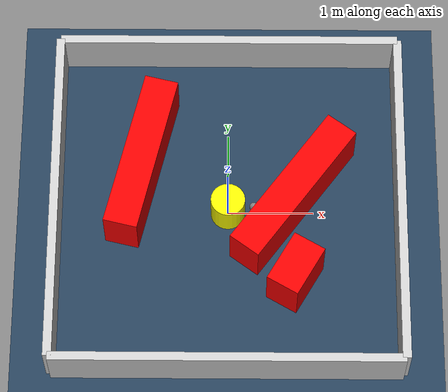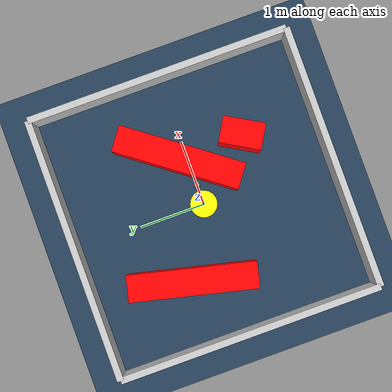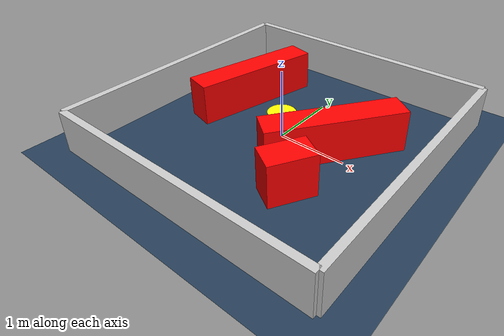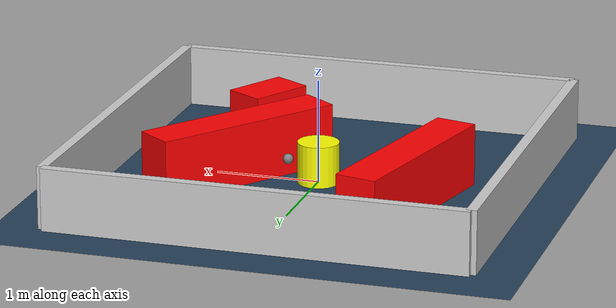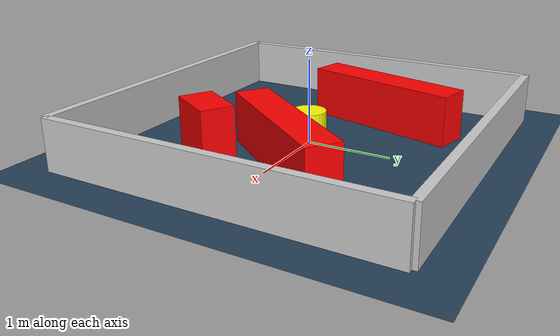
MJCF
<?xml version="1.0" ?>
<mujoco model="generated_environment">
  <option timestep="0.01" integrator="RK4" cone="elliptic"/>
  <default>
    <geom density="1"/>
  </default>
  <asset>
    <texture builtin="gradient" height="3072" rgb1="0.3 0.5 0.7" rgb2="0 0 0" type="skybox" width="512"/>
    <texture builtin="checker" height="300" mark="edge" markrgb="0.8 0.8 0.8" name="groundplane" rgb1="0.2 0.3 0.4" rgb2="0.1 0.2 0.3" type="2d" width="300"/>
    <material name="groundplane" reflectance="0.2" texrepeat="5 5" texture="groundplane" texuniform="true"/>
    <material name="robot" rgba="0.0 1.0 0.0 1"/>
  </asset>
  <worldbody>
    <light dir="0 0 -1" directional="true" pos="0 0 1.5"/>
    <geom condim="4" friction="1.0 0.005 0.001" material="groundplane" name="floor" size="0 0 0.05" type="plane"/>
    <body name="walls">
      <geom name="wall_1" condim="4" pos="-2.0 0.0 0.3" rgba="0.800000011920929 0.800000011920929 0.800000011920929 1.0" size="0.05 2.0 0.3" type="box"/>
      <geom name="wall_2" condim="4" pos="2.0 0.0 0.3" rgba="0.800000011920929 0.800000011920929 0.800000011920929 1.0" size="0.05 2.0 0.3" type="box"/>
      <geom name="wall_3" condim="4" pos="0.0 -2.0 0.3" rgba="0.800000011920929 0.800000011920929 0.800000011920929 1.0" size="2.0 0.05 0.3" type="box"/>
      <geom name="wall_4" condim="4" pos="0.0 2.0 0.3" rgba="0.800000011920929 0.800000011920929 0.800000011920929 1.0" size="2.0 0.05 0.3" type="box"/>
    </body>
    <body name="robot">
      <joint name="joint_x" type="slide" pos="0 0 0" axis="1 0 0"/>
      <joint name="joint_y" type="slide" pos="0 0 0" axis="0 1 0"/>
      <geom name="robot" type="sphere" pos="0.3 0.0 0.2" size="0.05" mass="5." friction="1.0 0.005 0.0001" condim="4" rgba="0.5 0.5 0.5 1.0"/>
      <site name="sensor_ball"/>
    </body>
    <body name="obstacle_movable_1">
      <geom name="obstacle_movable_1" condim="4" pos="0.0 0.0 0.2" euler="0 0 0.0" friction="1.0 0.005 0.001" rgba="1.0 1.0 0.0 1.0" size="0.2 0.2 0.0" type="cylinder" mass="0.1"/>
      <joint type="free"/>
    </body>
    <body name="obstacle_2_static">
      <geom name="obstacle_2_static" condim="4" pos="0.7574364079656224 0.11327342366123982 0.3" euler="0 0 233.52863013714457" friction="1.0 0.005 0.001" rgba="1 0 0 1" size="0.9619456895763299 0.2 0.3" type="box"/>
    </body>
    <body name="obstacle_3_static">
      <geom name="obstacle_3_static" condim="4" pos="-1.011580229193186 0.5334412312341021 0.3" euler="0 0 256.5087651279327" friction="1.0 0.005 0.001" rgba="1 0 0 1" size="0.956745585101539 0.2 0.3" type="box"/>
    </body>
    <body name="obstacle_4_static">
      <geom name="obstacle_4_static" condim="4" pos="0.7771070743869828 -0.8735207343357075 0.3" euler="0 0 239.8154603105341" friction="1.0 0.005 0.001" rgba="1 0 0 1" size="0.31728422711739906 0.2 0.3" type="box"/>
    </body>
  </worldbody>
  <actuator>
    <motor name="actuator_x" joint="joint_x" gear="1" ctrlrange="-1 1"/>
    <motor name="actuator_y" joint="joint_y" gear="1" ctrlrange="-1 1"/>
  </actuator>
</mujoco>
